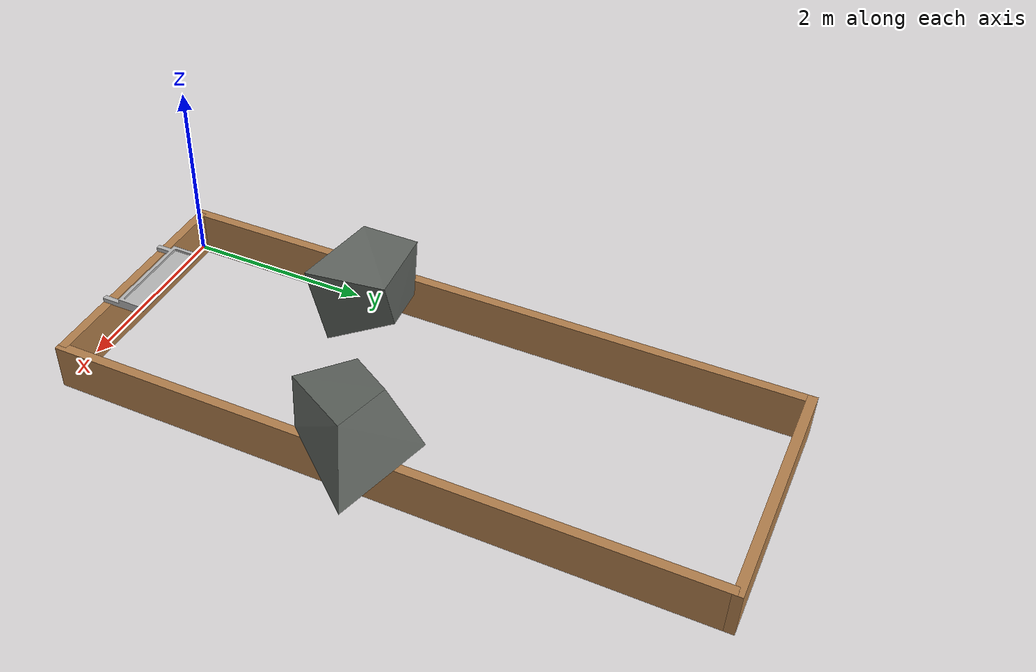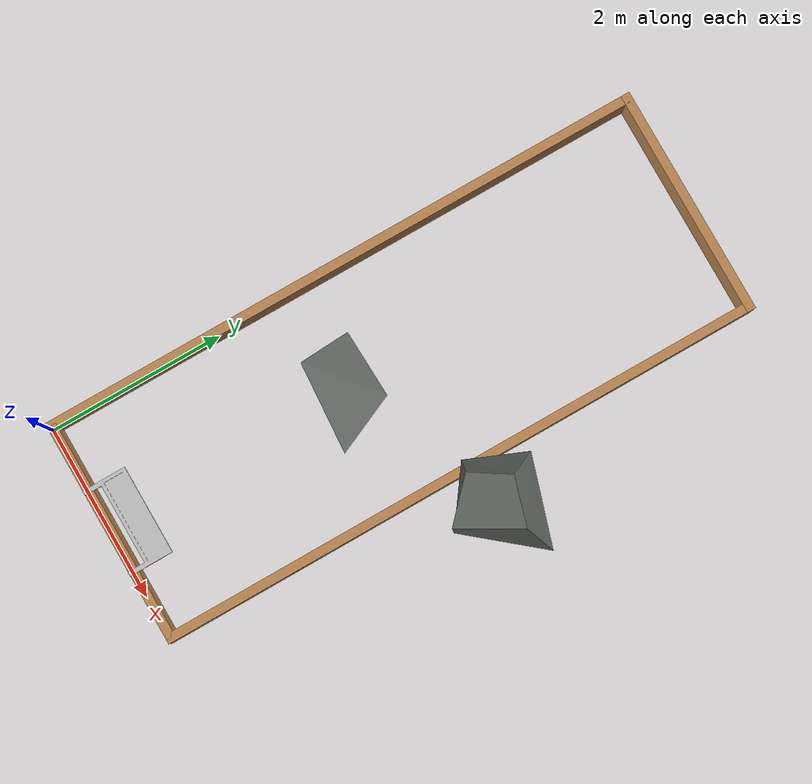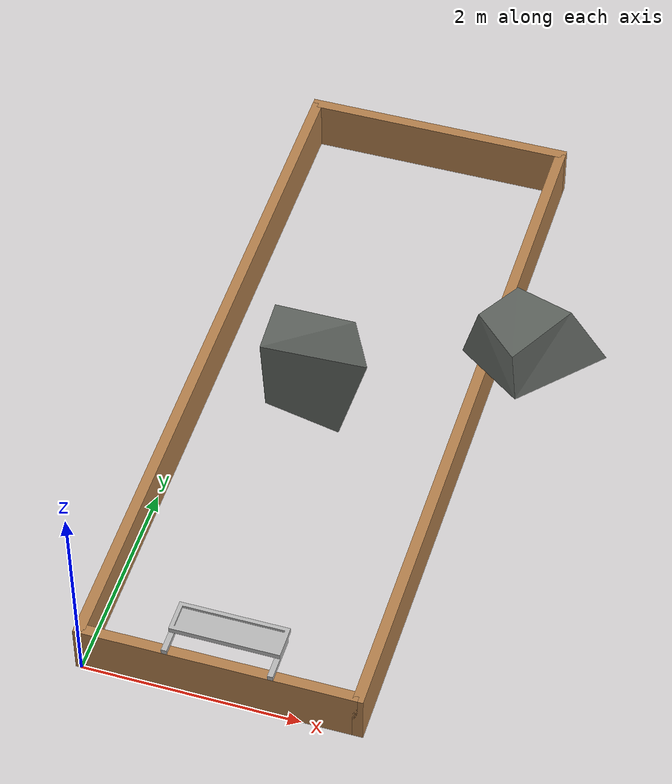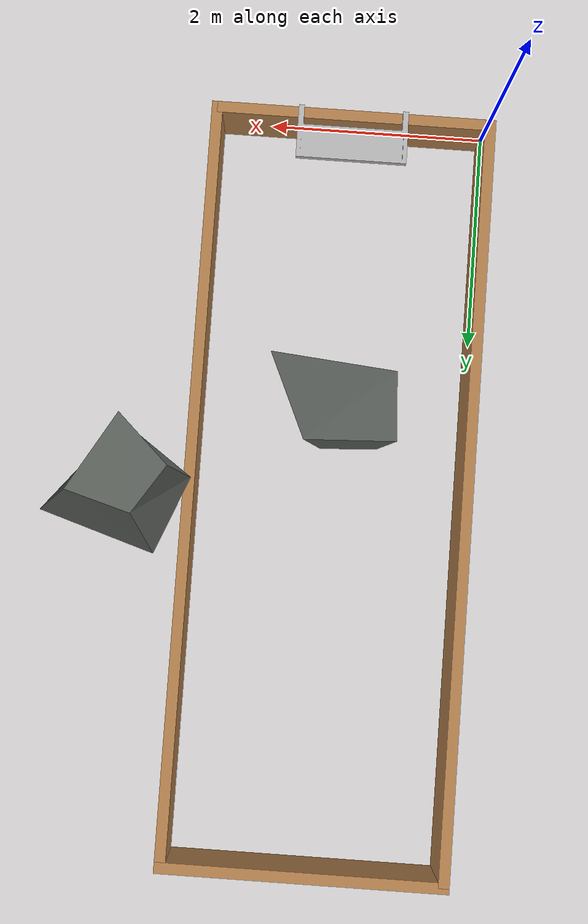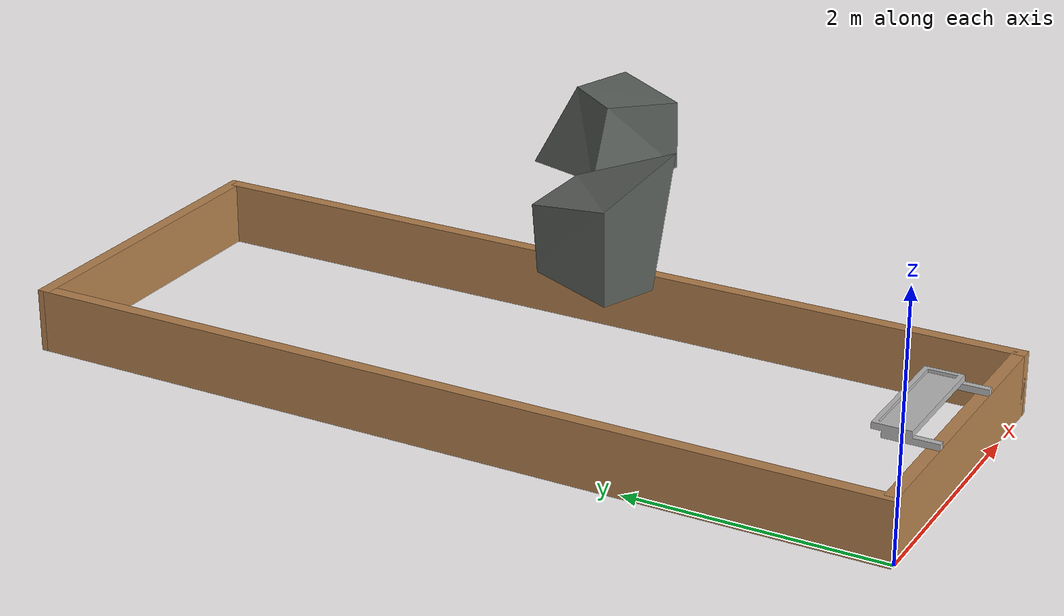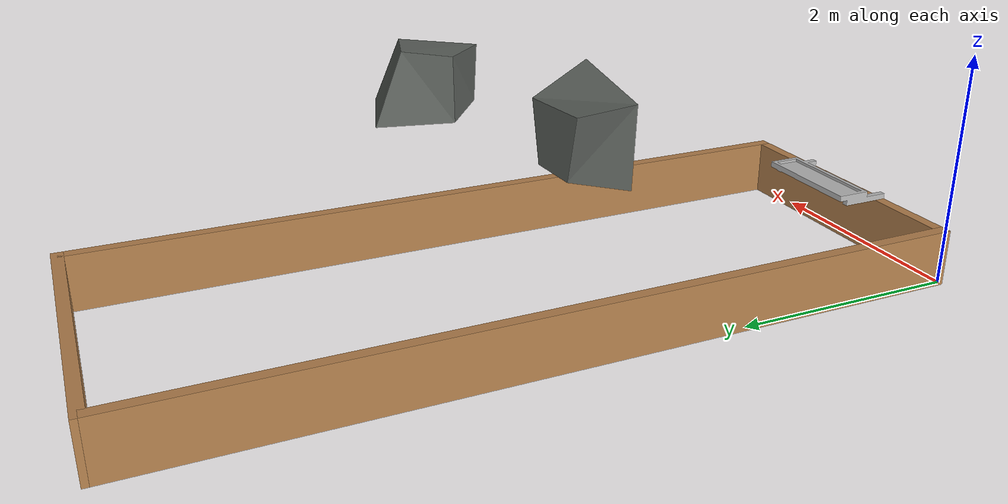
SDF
<sdf version="1.6">
 <world name="bumpy">
  <include><uri>model://sun</uri></include>
  <physics name="default_physics" default="0" type="ode">
   <max_step_size>0.01</max_step_size>
   <real_time_factor>1</real_time_factor>
   <real_time_update_rate>100</real_time_update_rate>
  </physics>
  <scene><ambient>0.4 0.4 0.4 1</ambient><background>0.7 0.7 0.7 1</background><shadows>0</shadows></scene>
  <model name="moon_arena"><include><uri>model://arena</uri></include></model>
  <model name="rock_1"><pose>0.5 1.6 0.2 0 0 0</pose><include><uri>model://rock</uri></include></model>
  <model name="rock_2"><pose>1.6 3.6 0.2 1.57 0 1</pose><include><uri>model://rock</uri></include></model>
  <model name="deposition_bin">
   <pose>0.755 .5 0.55 0 0 3.141592</pose>
   <include><uri>model://deposition_bin</uri></include>
  </model>
 </world>
</sdf>

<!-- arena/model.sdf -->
<sdf version='1.6'>
  <model name='moon_arena'>
    <pose frame=''>0 0 0 0 -0 0</pose>
    <link name='short_wall_1'>
      <collision name='short_wall_1_Collision'>
        <geometry>
          <box>
            <size>2.6 0.1 0.5</size>
          </box>
        </geometry>
        <pose frame=''>0 0 0.25 0 -0 0</pose>
        <max_contacts>10</max_contacts>
      </collision>
      <visual name='short_wall_1_Visual'>
        <pose frame=''>0 0 0.25 0 -0 0</pose>
        <geometry>
          <box>
            <size>2.5 0.1 0.5</size>
          </box>
        </geometry>
        <material>
          <script>
            <uri>file://media/materials/scripts/gazebo.material</uri>
            <name>Gazebo/Wood</name>
          </script>
          <ambient>1 1 1 1</ambient>
        </material>
        <meta>
          <layer>0</layer>
        </meta>
      </visual>
      <pose frame=''>1.25 0.05 0 0 -0 0</pose>
      <self_collide>0</self_collide>
      <enable_wind>0</enable_wind>
      <kinematic>0</kinematic>
    </link>
    <link name='long_wall_1'>
      <collision name='long_wall_1_Collision'>
        <geometry>
          <box>
            <size>6.9 0.1 0.5</size>
          </box>
        </geometry>
        <pose frame=''>0 0 0.25 0 -0 0</pose>
        <max_contacts>10</max_contacts>
      </collision>
      <visual name='long_wall_1_Visual'>
        <pose frame=''>0 0 0.25 0 -0 0</pose>
        <geometry>
          <box>
            <size>6.9 0.1 0.5</size>
          </box>
        </geometry>
        <material>
          <script>
            <uri>file://media/materials/scripts/gazebo.material</uri>
            <name>Gazebo/Wood</name>
          </script>
          <ambient>1 1 1 1</ambient>
        </material>
        <meta>
          <layer>0</layer>
        </meta>
      </visual>
      <pose frame=''>0 3.45 0 0 -0 1.5708</pose>
      <self_collide>0</self_collide>
      <enable_wind>0</enable_wind>
      <kinematic>0</kinematic>
    </link>
    <link name='long_wall_2'>
      <collision name='long_wall_2_Collision'>
        <geometry>
          <box>
            <size>6.9 0.1 0.5</size>
          </box>
        </geometry>
        <pose frame=''>0 0 0.25 0 -0 0</pose>
        <max_contacts>10</max_contacts>
      </collision>
      <visual name='long_wall_2_Visual'>
        <pose frame=''>0 0 0.25 0 -0 0</pose>
        <geometry>
          <box>
            <size>6.9 0.1 0.5</size>
          </box>
        </geometry>
        <material>
          <script>
            <uri>file://media/materials/scripts/gazebo.material</uri>
            <name>Gazebo/Wood</name>
          </script>
          <ambient>1 1 1 1</ambient>
        </material>
        <meta>
          <layer>0</layer>
        </meta>
      </visual>
      <pose frame=''>2.5 3.45 0 0 -0 1.5708</pose>
      <self_collide>0</self_collide>
      <enable_wind>0</enable_wind>
      <kinematic>0</kinematic>
    </link>
    <link name='short_wall_2'>
      <collision name='short_wall_2_Collision'>
        <geometry>
          <box>
            <size>2.5 0.1 0.5</size>
          </box>
        </geometry>
        <pose frame=''>0 0 0.25 0 -0 0</pose>
        <max_contacts>10</max_contacts>
      </collision>
      <visual name='short_wall_2_Visual'>
        <pose frame=''>0 0 0.25 0 -0 0</pose>
        <geometry>
          <box>
            <size>2.6 0.1 0.5</size>
          </box>
        </geometry>
        <material>
          <script>
            <uri>file://media/materials/scripts/gazebo.material</uri>
            <name>Gazebo/Wood</name>
          </script>
          <ambient>1 1 1 1</ambient>
        </material>
        <meta>
          <layer>0</layer>
        </meta>
      </visual>
      <pose frame=''>1.25 6.9 0 0 -0 0</pose>
      <self_collide>0</self_collide>
      <enable_wind>0</enable_wind>
      <kinematic>0</kinematic>
    </link>
    <static>1</static>
  </model>
</sdf>

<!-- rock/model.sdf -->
<sdf version='1.6'>
  <model name='rock'>
    <link name='link_0'>
      <pose frame=''>-0 0 0 0 -0 0</pose>
      <gravity>0</gravity>
      <self_collide>0</self_collide>
      <kinematic>0</kinematic>
      <enable_wind>0</enable_wind>
      <visual name='visual'>
        <pose frame=''>0 0 0 0 -0 0</pose>
        <geometry>
          <mesh>
            <uri>model://rock/meshes/rock.dae</uri>
            <scale>1 1 1</scale>
          </mesh>
        </geometry>
        <material>
          <lighting>1</lighting>
          <ambient>0.36 0.38 0.36 1</ambient>
          <diffuse>0.36 0.38 0.36 1</diffuse>
          <specular>0.01 0.01 0.01 1</specular>
          <emissive>0 0 0 1</emissive>
        </material>
        <transparency>0</transparency>
        <cast_shadows>1</cast_shadows>
      </visual>
      <collision name='collision'>
        <laser_retro>0</laser_retro>
        <max_contacts>10</max_contacts>
        <pose frame=''>0 0 0 0 -0 0</pose>
        <geometry>
          <mesh>
            <uri>model://rock/meshes/rock.dae</uri>
            <scale>1 1 1</scale>
          </mesh>
        </geometry>
      </collision>
    </link>
    <static>1</static>
    <allow_auto_disable>1</allow_auto_disable>
  </model>
</sdf>

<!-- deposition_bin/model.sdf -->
<sdf version='1.6'>
  <model name='deposition_bin'>
    <link name='link_0'>
      <pose frame=''>-0 0 0 0 -0 0</pose>
      <gravity>0</gravity>
      <self_collide>0</self_collide>
      <kinematic>0</kinematic>
      <enable_wind>0</enable_wind>
      <visual name='visual'>
        <pose frame=''>0 0 0 0 -0 0</pose>
        <geometry>
          <mesh>
            <uri>model://deposition_bin/meshes/deposition_bin.dae</uri>
            <scale>1 1 1</scale>
          </mesh>
        </geometry>
        <transparency>0</transparency>
        <cast_shadows>1</cast_shadows>
      </visual>
      <collision name='collision'>
        <laser_retro>0</laser_retro>
        <max_contacts>10</max_contacts>
        <pose frame=''>0 0 0 0 -0 0</pose>
        <geometry>
          <mesh>
            <uri>model://deposition_bin/meshes/deposition_bin.dae</uri>
            <scale>1 1 1</scale>
          </mesh>
        </geometry>
      </collision>
    </link>
    <static>1</static>
    <allow_auto_disable>1</allow_auto_disable>
  </model>
</sdf>
